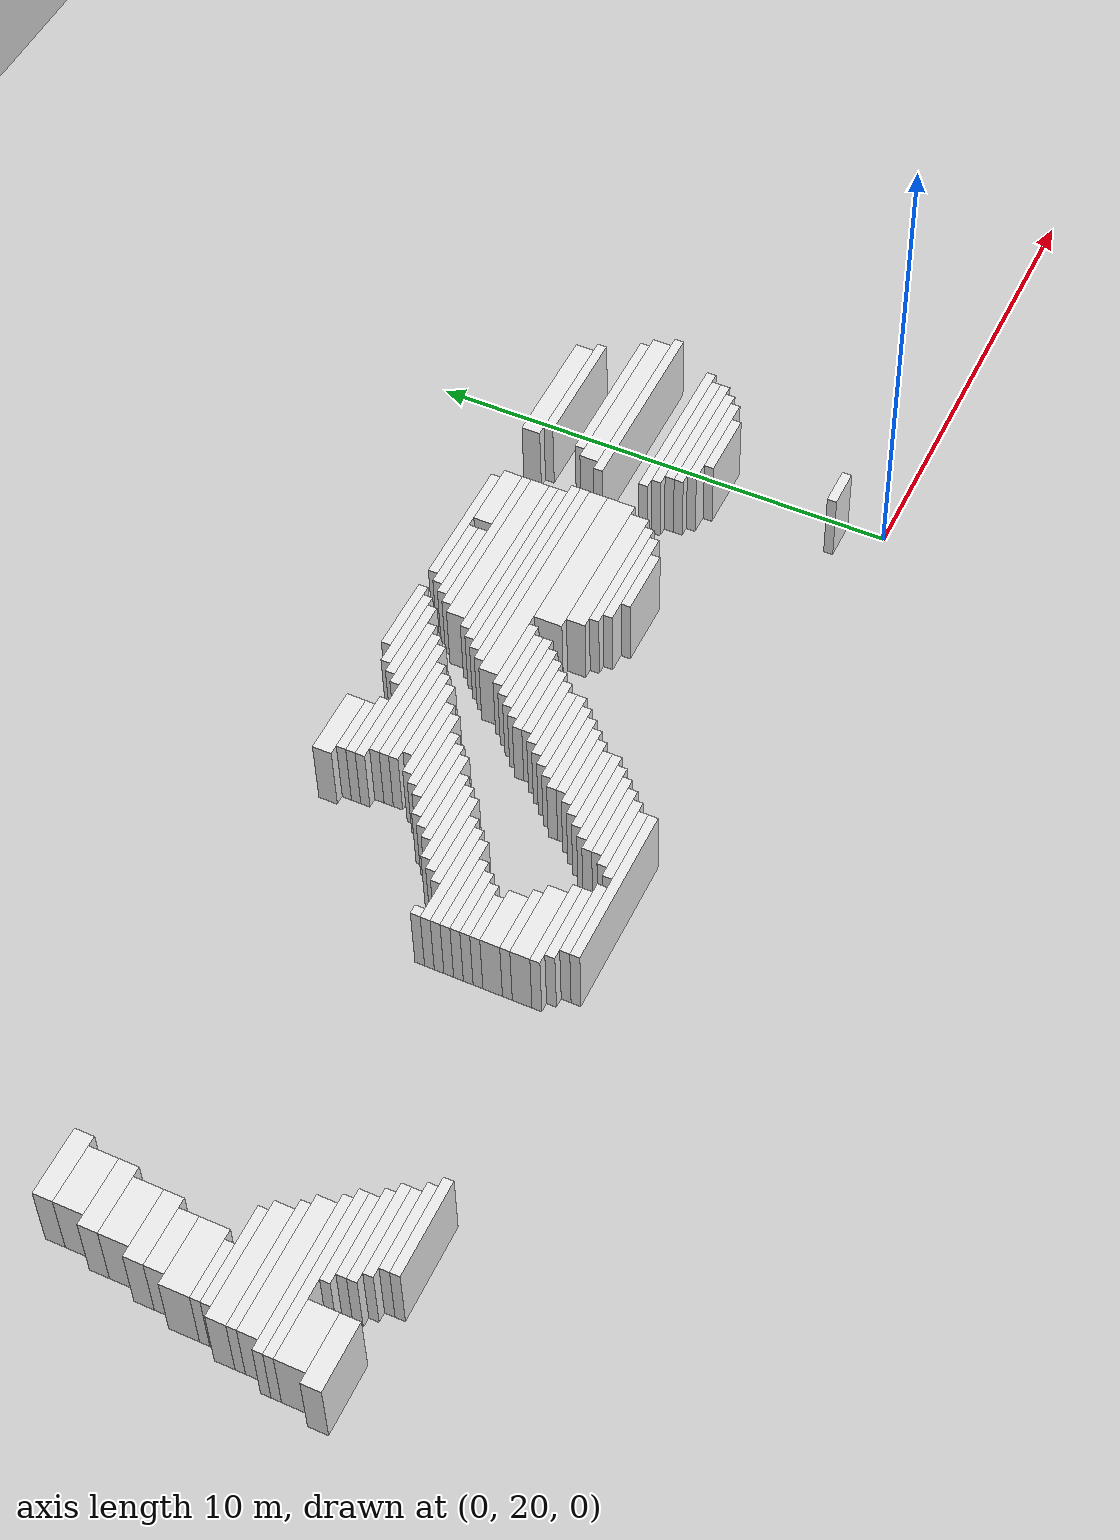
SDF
<sdf version="1.7">
 <world name="default">
  <model name="ground_plane">
   <static>1</static>
   <link name="link">
    <collision name="collision">
     <geometry><plane><normal>0 0 1</normal><size>120 120</size></plane></geometry>
    </collision>
    <visual name="visual">
     <geometry><plane><normal>0 0 1</normal><size>120 120</size></plane></geometry>
     <material>
      <script><uri>file://media/materials/scripts/gazebo.material</uri><name>Gazebo/Grey</name></script>
     </material>
    </visual>
   </link>
  </model>
  <model name="random_complex_02_model">
   <static>1</static>
   <link name="obs_894">
    <pose>-7.0000 27.3000 0.8000 0 0 0</pose>
    <collision name="obs_894_col"><geometry><box><size>1.6000 0.2000 1.6000</size></box></geometry></collision>
    <visual name="obs_894_vis">
     <geometry><box><size>1.6000 0.2000 1.6000</size></box></geometry>
     <material>
      <script><uri>file://media/materials/scripts/gazebo.material</uri><name>Gazebo/White</name></script>
     </material>
    </visual>
   </link>
   <link name="obs_895">
    <pose>-4.4000 27.3000 0.8000 0 0 0</pose>
    <collision name="obs_895_col"><geometry><box><size>2.8000 0.2000 1.6000</size></box></geometry></collision>
    <visual name="obs_895_vis">
     <geometry><box><size>2.8000 0.2000 1.6000</size></box></geometry>
     <material>
      <script><uri>file://media/materials/scripts/gazebo.material</uri><name>Gazebo/White</name></script>
     </material>
    </visual>
   </link>
   <link name="obs_899">
    <pose>-9.9000 27.2000 0.8000 0 0 0</pose>
    <collision name="obs_899_col"><geometry><box><size>1.4000 0.4000 1.6000</size></box></geometry></collision>
    <visual name="obs_899_vis">
     <geometry><box><size>1.4000 0.4000 1.6000</size></box></geometry>
     <material>
      <script><uri>file://media/materials/scripts/gazebo.material</uri><name>Gazebo/White</name></script>
     </material>
    </visual>
   </link>
   <link name="obs_900">
    <pose>-0.3000 27.2000 0.8000 0 0 0</pose>
    <collision name="obs_900_col"><geometry><box><size>2.6000 0.4000 1.6000</size></box></geometry></collision>
    <visual name="obs_900_vis">
     <geometry><box><size>2.6000 0.4000 1.6000</size></box></geometry>
     <material>
      <script><uri>file://media/materials/scripts/gazebo.material</uri><name>Gazebo/White</name></script>
     </material>
    </visual>
   </link>
   <link name="obs_901">
    <pose>-7.3000 27.1000 0.8000 0 0 0</pose>
    <collision name="obs_901_col"><geometry><box><size>1.8000 0.2000 1.6000</size></box></geometry></collision>
    <visual name="obs_901_vis">
     <geometry><box><size>1.8000 0.2000 1.6000</size></box></geometry>
     <material>
      <script><uri>file://media/materials/scripts/gazebo.material</uri><name>Gazebo/White</name></script>
     </material>
    </visual>
   </link>
   <link name="obs_902">
    <pose>-5.2000 27.1000 0.8000 0 0 0</pose>
    <collision name="obs_902_col"><geometry><box><size>1.6000 0.2000 1.6000</size></box></geometry></collision>
    <visual name="obs_902_vis">
     <geometry><box><size>1.6000 0.2000 1.6000</size></box></geometry>
     <material>
      <script><uri>file://media/materials/scripts/gazebo.material</uri><name>Gazebo/White</name></script>
     </material>
    </visual>
   </link>
   <link name="obs_906">
    <pose>-20.3000 27.0000 0.8000 0 0 0</pose>
    <collision name="obs_906_col"><geometry><box><size>1.4000 0.4000 1.6000</size></box></geometry></collision>
    <visual name="obs_906_vis">
     <geometry><box><size>1.4000 0.4000 1.6000</size></box></geometry>
     <material>
      <script><uri>file://media/materials/scripts/gazebo.material</uri><name>Gazebo/White</name></script>
     </material>
    </visual>
   </link>
   <link name="obs_907">
    <pose>-3.5000 27.0000 0.8000 0 0 0</pose>
    <collision name="obs_907_col"><geometry><box><size>1.4000 0.4000 1.6000</size></box></geometry></collision>
    <visual name="obs_907_vis">
     <geometry><box><size>1.4000 0.4000 1.6000</size></box></geometry>
     <material>
      <script><uri>file://media/materials/scripts/gazebo.material</uri><name>Gazebo/White</name></script>
     </material>
    </visual>
   </link>
   <link name="obs_909">
    <pose>-9.8000 26.9000 0.8000 0 0 0</pose>
    <collision name="obs_909_col"><geometry><box><size>1.2000 0.2000 1.6000</size></box></geometry></collision>
    <visual name="obs_909_vis">
     <geometry><box><size>1.2000 0.2000 1.6000</size></box></geometry>
     <material>
      <script><uri>file://media/materials/scripts/gazebo.material</uri><name>Gazebo/White</name></script>
     </material>
    </visual>
   </link>
   <link name="obs_910">
    <pose>-7.5000 26.9000 0.8000 0 0 0</pose>
    <collision name="obs_910_col"><geometry><box><size>1.8000 0.2000 1.6000</size></box></geometry></collision>
    <visual name="obs_910_vis">
     <geometry><box><size>1.8000 0.2000 1.6000</size></box></geometry>
     <material>
      <script><uri>file://media/materials/scripts/gazebo.material</uri><name>Gazebo/White</name></script>
     </material>
    </visual>
   </link>
   <link name="obs_911">
    <pose>-5.3000 26.9000 0.8000 0 0 0</pose>
    <collision name="obs_911_col"><geometry><box><size>1.8000 0.2000 1.6000</size></box></geometry></collision>
    <visual name="obs_911_vis">
     <geometry><box><size>1.8000 0.2000 1.6000</size></box></geometry>
     <material>
      <script><uri>file://media/materials/scripts/gazebo.material</uri><name>Gazebo/White</name></script>
     </material>
    </visual>
   </link>
   <link name="obs_912">
    <pose>-0.1000 26.9000 0.8000 0 0 0</pose>
    <collision name="obs_912_col"><geometry><box><size>2.6000 0.2000 1.6000</size></box></geometry></collision>
    <visual name="obs_912_vis">
     <geometry><box><size>2.6000 0.2000 1.6000</size></box></geometry>
     <material>
      <script><uri>file://media/materials/scripts/gazebo.material</uri><name>Gazebo/White</name></script>
     </material>
    </visual>
   </link>
   <link name="obs_916">
    <pose>-9.7000 26.7000 0.8000 0 0 0</pose>
    <collision name="obs_916_col"><geometry><box><size>1.4000 0.2000 1.6000</size></box></geometry></collision>
    <visual name="obs_916_vis">
     <geometry><box><size>1.4000 0.2000 1.6000</size></box></geometry>
     <material>
      <script><uri>file://media/materials/scripts/gazebo.material</uri><name>Gazebo/White</name></script>
     </material>
    </visual>
   </link>
   <link name="obs_917">
    <pose>-7.8000 26.7000 0.8000 0 0 0</pose>
    <collision name="obs_917_col"><geometry><box><size>1.6000 0.2000 1.6000</size></box></geometry></collision>
    <visual name="obs_917_vis">
     <geometry><box><size>1.6000 0.2000 1.6000</size></box></geometry>
     <material>
      <script><uri>file://media/materials/scripts/gazebo.material</uri><name>Gazebo/White</name></script>
     </material>
    </visual>
   </link>
   <link name="obs_918">
    <pose>-4.6000 26.7000 0.8000 0 0 0</pose>
    <collision name="obs_918_col"><geometry><box><size>3.6000 0.2000 1.6000</size></box></geometry></collision>
    <visual name="obs_918_vis">
     <geometry><box><size>3.6000 0.2000 1.6000</size></box></geometry>
     <material>
      <script><uri>file://media/materials/scripts/gazebo.material</uri><name>Gazebo/White</name></script>
     </material>
    </visual>
   </link>
   <link name="obs_924">
    <pose>-8.8000 26.5000 0.8000 0 0 0</pose>
    <collision name="obs_924_col"><geometry><box><size>3.2000 0.2000 1.6000</size></box></geometry></collision>
    <visual name="obs_924_vis">
     <geometry><box><size>3.2000 0.2000 1.6000</size></box></geometry>
     <material>
      <script><uri>file://media/materials/scripts/gazebo.material</uri><name>Gazebo/White</name></script>
     </material>
    </visual>
   </link>
   <link name="obs_927">
    <pose>-20.4000 26.5000 0.8000 0 0 0</pose>
    <collision name="obs_927_col"><geometry><box><size>1.2000 0.6000 1.6000</size></box></geometry></collision>
    <visual name="obs_927_vis">
     <geometry><box><size>1.2000 0.6000 1.6000</size></box></geometry>
     <material>
      <script><uri>file://media/materials/scripts/gazebo.material</uri><name>Gazebo/White</name></script>
     </material>
    </visual>
   </link>
   <link name="obs_928">
    <pose>-4.7000 26.4000 0.8000 0 0 0</pose>
    <collision name="obs_928_col"><geometry><box><size>3.8000 0.4000 1.6000</size></box></geometry></collision>
    <visual name="obs_928_vis">
     <geometry><box><size>3.8000 0.4000 1.6000</size></box></geometry>
     <material>
      <script><uri>file://media/materials/scripts/gazebo.material</uri><name>Gazebo/White</name></script>
     </material>
    </visual>
   </link>
   <link name="obs_931">
    <pose>-8.8000 26.3000 0.8000 0 0 0</pose>
    <collision name="obs_931_col"><geometry><box><size>2.8000 0.2000 1.6000</size></box></geometry></collision>
    <visual name="obs_931_vis">
     <geometry><box><size>2.8000 0.2000 1.6000</size></box></geometry>
     <material>
      <script><uri>file://media/materials/scripts/gazebo.material</uri><name>Gazebo/White</name></script>
     </material>
    </visual>
   </link>
   <link name="obs_938">
    <pose>-9.0000 26.1000 0.8000 0 0 0</pose>
    <collision name="obs_938_col"><geometry><box><size>2.4000 0.2000 1.6000</size></box></geometry></collision>
    <visual name="obs_938_vis">
     <geometry><box><size>2.4000 0.2000 1.6000</size></box></geometry>
     <material>
      <script><uri>file://media/materials/scripts/gazebo.material</uri><name>Gazebo/White</name></script>
     </material>
    </visual>
   </link>
   <link name="obs_939">
    <pose>-4.8000 26.1000 0.8000 0 0 0</pose>
    <collision name="obs_939_col"><geometry><box><size>4.0000 0.2000 1.6000</size></box></geometry></collision>
    <visual name="obs_939_vis">
     <geometry><box><size>4.0000 0.2000 1.6000</size></box></geometry>
     <material>
      <script><uri>file://media/materials/scripts/gazebo.material</uri><name>Gazebo/White</name></script>
     </material>
    </visual>
   </link>
   <link name="obs_940">
    <pose>0.0000 26.1000 0.8000 0 0 0</pose>
    <collision name="obs_940_col"><geometry><box><size>3.2000 0.2000 1.6000</size></box></geometry></collision>
    <visual name="obs_940_vis">
     <geometry><box><size>3.2000 0.2000 1.6000</size></box></geometry>
     <material>
      <script><uri>file://media/materials/scripts/gazebo.material</uri><name>Gazebo/White</name></script>
     </material>
    </visual>
   </link>
   <link name="obs_945">
    <pose>-20.5000 26.0000 0.8000 0 0 0</pose>
    <collision name="obs_945_col"><geometry><box><size>1.4000 0.4000 1.6000</size></box></geometry></collision>
    <visual name="obs_945_vis">
     <geometry><box><size>1.4000 0.4000 1.6000</size></box></geometry>
     <material>
      <script><uri>file://media/materials/scripts/gazebo.material</uri><name>Gazebo/White</name></script>
     </material>
    </visual>
   </link>
   <link name="obs_948">
    <pose>-9.1000 25.9000 0.8000 0 0 0</pose>
    <collision name="obs_948_col"><geometry><box><size>2.2000 0.2000 1.6000</size></box></geometry></collision>
    <visual name="obs_948_vis">
     <geometry><box><size>2.2000 0.2000 1.6000</size></box></geometry>
     <material>
      <script><uri>file://media/materials/scripts/gazebo.material</uri><name>Gazebo/White</name></script>
     </material>
    </visual>
   </link>
   <link name="obs_949">
    <pose>-4.9000 25.9000 0.8000 0 0 0</pose>
    <collision name="obs_949_col"><geometry><box><size>4.2000 0.2000 1.6000</size></box></geometry></collision>
    <visual name="obs_949_vis">
     <geometry><box><size>4.2000 0.2000 1.6000</size></box></geometry>
     <material>
      <script><uri>file://media/materials/scripts/gazebo.material</uri><name>Gazebo/White</name></script>
     </material>
    </visual>
   </link>
   <link name="obs_953">
    <pose>0.0000 25.8000 0.8000 0 0 0</pose>
    <collision name="obs_953_col"><geometry><box><size>3.6000 0.4000 1.6000</size></box></geometry></collision>
    <visual name="obs_953_vis">
     <geometry><box><size>3.6000 0.4000 1.6000</size></box></geometry>
     <material>
      <script><uri>file://media/materials/scripts/gazebo.material</uri><name>Gazebo/White</name></script>
     </material>
    </visual>
   </link>
   <link name="obs_956">
    <pose>-9.1000 25.7000 0.8000 0 0 0</pose>
    <collision name="obs_956_col"><geometry><box><size>1.8000 0.2000 1.6000</size></box></geometry></collision>
    <visual name="obs_956_vis">
     <geometry><box><size>1.8000 0.2000 1.6000</size></box></geometry>
     <material>
      <script><uri>file://media/materials/scripts/gazebo.material</uri><name>Gazebo/White</name></script>
     </material>
    </visual>
   </link>
   <link name="obs_957">
    <pose>-4.9000 25.7000 0.8000 0 0 0</pose>
    <collision name="obs_957_col"><geometry><box><size>4.6000 0.2000 1.6000</size></box></geometry></collision>
    <visual name="obs_957_vis">
     <geometry><box><size>4.6000 0.2000 1.6000</size></box></geometry>
     <material>
      <script><uri>file://media/materials/scripts/gazebo.material</uri><name>Gazebo/White</name></script>
     </material>
    </visual>
   </link>
   <link name="obs_963">
    <pose>-9.5000 25.5000 0.8000 0 0 0</pose>
    <collision name="obs_963_col"><geometry><box><size>1.8000 0.2000 1.6000</size></box></geometry></collision>
    <visual name="obs_963_vis">
     <geometry><box><size>1.8000 0.2000 1.6000</size></box></geometry>
     <material>
      <script><uri>file://media/materials/scripts/gazebo.material</uri><name>Gazebo/White</name></script>
     </material>
    </visual>
   </link>
   <link name="obs_964">
    <pose>-5.0000 25.5000 0.8000 0 0 0</pose>
    <collision name="obs_964_col"><geometry><box><size>4.8000 0.2000 1.6000</size></box></geometry></collision>
    <visual name="obs_964_vis">
     <geometry><box><size>4.8000 0.2000 1.6000</size></box></geometry>
     <material>
      <script><uri>file://media/materials/scripts/gazebo.material</uri><name>Gazebo/White</name></script>
     </material>
    </visual>
   </link>
   <link name="obs_965">
    <pose>0.0000 25.5000 0.8000 0 0 0</pose>
    <collision name="obs_965_col"><geometry><box><size>4.0000 0.2000 1.6000</size></box></geometry></collision>
    <visual name="obs_965_vis">
     <geometry><box><size>4.0000 0.2000 1.6000</size></box></geometry>
     <material>
      <script><uri>file://media/materials/scripts/gazebo.material</uri><name>Gazebo/White</name></script>
     </material>
    </visual>
   </link>
   <link name="obs_970">
    <pose>-20.6000 25.5000 0.8000 0 0 0</pose>
    <collision name="obs_970_col"><geometry><box><size>1.2000 0.6000 1.6000</size></box></geometry></collision>
    <visual name="obs_970_vis">
     <geometry><box><size>1.2000 0.6000 1.6000</size></box></geometry>
     <material>
      <script><uri>file://media/materials/scripts/gazebo.material</uri><name>Gazebo/White</name></script>
     </material>
    </visual>
   </link>
   <link name="obs_973">
    <pose>-9.7000 25.3000 0.8000 0 0 0</pose>
    <collision name="obs_973_col"><geometry><box><size>1.8000 0.2000 1.6000</size></box></geometry></collision>
    <visual name="obs_973_vis">
     <geometry><box><size>1.8000 0.2000 1.6000</size></box></geometry>
     <material>
      <script><uri>file://media/materials/scripts/gazebo.material</uri><name>Gazebo/White</name></script>
     </material>
    </visual>
   </link>
   <link name="obs_976">
    <pose>-5.1000 25.2000 0.8000 0 0 0</pose>
    <collision name="obs_976_col"><geometry><box><size>5.0000 0.4000 1.6000</size></box></geometry></collision>
    <visual name="obs_976_vis">
     <geometry><box><size>5.0000 0.4000 1.6000</size></box></geometry>
     <material>
      <script><uri>file://media/materials/scripts/gazebo.material</uri><name>Gazebo/White</name></script>
     </material>
    </visual>
   </link>
   <link name="obs_980">
    <pose>-10.0000 25.1000 0.8000 0 0 0</pose>
    <collision name="obs_980_col"><geometry><box><size>1.6000 0.2000 1.6000</size></box></geometry></collision>
    <visual name="obs_980_vis">
     <geometry><box><size>1.6000 0.2000 1.6000</size></box></geometry>
     <material>
      <script><uri>file://media/materials/scripts/gazebo.material</uri><name>Gazebo/White</name></script>
     </material>
    </visual>
   </link>
   <link name="obs_984">
    <pose>-20.7000 25.0000 0.8000 0 0 0</pose>
    <collision name="obs_984_col"><geometry><box><size>1.4000 0.4000 1.6000</size></box></geometry></collision>
    <visual name="obs_984_vis">
     <geometry><box><size>1.4000 0.4000 1.6000</size></box></geometry>
     <material>
      <script><uri>file://media/materials/scripts/gazebo.material</uri><name>Gazebo/White</name></script>
     </material>
    </visual>
   </link>
   <link name="obs_987">
    <pose>-10.3000 24.9000 0.8000 0 0 0</pose>
    <collision name="obs_987_col"><geometry><box><size>1.8000 0.2000 1.6000</size></box></geometry></collision>
    <visual name="obs_987_vis">
     <geometry><box><size>1.8000 0.2000 1.6000</size></box></geometry>
     <material>
      <script><uri>file://media/materials/scripts/gazebo.material</uri><name>Gazebo/White</name></script>
     </material>
    </visual>
   </link>
   <link name="obs_988">
    <pose>-7.0000 24.9000 0.8000 0 0 0</pose>
    <collision name="obs_988_col"><geometry><box><size>1.6000 0.2000 1.6000</size></box></geometry></collision>
    <visual name="obs_988_vis">
     <geometry><box><size>1.6000 0.2000 1.6000</size></box></geometry>
     <material>
      <script><uri>file://media/materials/scripts/gazebo.material</uri><name>Gazebo/White</name></script>
     </material>
    </visual>
   </link>
   <link name="obs_998">
    <pose>-10.5000 24.7000 0.8000 0 0 0</pose>
    <collision name="obs_998_col"><geometry><box><size>1.8000 0.2000 1.6000</size></box></geometry></collision>
    <visual name="obs_998_vis">
     <geometry><box><size>1.8000 0.2000 1.6000</size></box></geometry>
     <material>
      <script><uri>file://media/materials/scripts/gazebo.material</uri><name>Gazebo/White</name></script>
     </material>
    </visual>
   </link>
   <link name="obs_999">
    <pose>-7.2000 24.7000 0.8000 0 0 0</pose>
    <collision name="obs_999_col"><geometry><box><size>1.6000 0.2000 1.6000</size></box></geometry></collision>
    <visual name="obs_999_vis">
     <geometry><box><size>1.6000 0.2000 1.6000</size></box></geometry>
     <material>
      <script><uri>file://media/materials/scripts/gazebo.material</uri><name>Gazebo/White</name></script>
     </material>
    </visual>
   </link>
   <link name="obs_1006">
    <pose>-4.3000 24.7000 0.8000 0 0 0</pose>
    <collision name="obs_1006_col"><geometry><box><size>3.4000 0.6000 1.6000</size></box></geometry></collision>
    <visual name="obs_1006_vis">
     <geometry><box><size>3.4000 0.6000 1.6000</size></box></geometry>
     <material>
      <script><uri>file://media/materials/scripts/gazebo.material</uri><name>Gazebo/White</name></script>
     </material>
    </visual>
   </link>
   <link name="obs_1007">
    <pose>-20.8000 24.6000 0.8000 0 0 0</pose>
    <collision name="obs_1007_col"><geometry><box><size>1.2000 0.4000 1.6000</size></box></geometry></collision>
    <visual name="obs_1007_vis">
     <geometry><box><size>1.2000 0.4000 1.6000</size></box></geometry>
     <material>
      <script><uri>file://media/materials/scripts/gazebo.material</uri><name>Gazebo/White</name></script>
     </material>
    </visual>
   </link>
   <link name="obs_1009">
    <pose>-10.8000 24.5000 0.8000 0 0 0</pose>
    <collision name="obs_1009_col"><geometry><box><size>1.6000 0.2000 1.6000</size></box></geometry></collision>
    <visual name="obs_1009_vis">
     <geometry><box><size>1.6000 0.2000 1.6000</size></box></geometry>
     <material>
      <script><uri>file://media/materials/scripts/gazebo.material</uri><name>Gazebo/White</name></script>
     </material>
    </visual>
   </link>
   <link name="obs_1010">
    <pose>-7.3000 24.5000 0.8000 0 0 0</pose>
    <collision name="obs_1010_col"><geometry><box><size>1.8000 0.2000 1.6000</size></box></geometry></collision>
    <visual name="obs_1010_vis">
     <geometry><box><size>1.8000 0.2000 1.6000</size></box></geometry>
     <material>
      <script><uri>file://media/materials/scripts/gazebo.material</uri><name>Gazebo/White</name></script>
     </material>
    </visual>
   </link>
   <link name="obs_1011">
    <pose>-0.3000 24.5000 0.8000 0 0 0</pose>
    <collision name="obs_1011_col"><geometry><box><size>3.4000 0.2000 1.6000</size></box></geometry></collision>
    <visual name="obs_1011_vis">
     <geometry><box><size>3.4000 0.2000 1.6000</size></box></geometry>
     <material>
      <script><uri>file://media/materials/scripts/gazebo.material</uri><name>Gazebo/White</name></script>
     </material>
    </visual>
   </link>
   <link name="obs_1021">
    <pose>-11.1000 24.3000 0.8000 0 0 0</pose>
    <collision name="obs_1021_col"><geometry><box><size>1.8000 0.2000 1.6000</size></box></geometry></collision>
    <visual name="obs_1021_vis">
     <geometry><box><size>1.8000 0.2000 1.6000</size></box></geometry>
     <material>
      <script><uri>file://media/materials/scripts/gazebo.material</uri><name>Gazebo/White</name></script>
     </material>
    </visual>
   </link>
   <link name="obs_1022">
    <pose>-7.5000 24.3000 0.8000 0 0 0</pose>
    <collision name="obs_1022_col"><geometry><box><size>1.8000 0.2000 1.6000</size></box></geometry></collision>
    <visual name="obs_1022_vis">
     <geometry><box><size>1.8000 0.2000 1.6000</size></box></geometry>
     <material>
      <script><uri>file://media/materials/scripts/gazebo.material</uri><name>Gazebo/White</name></script>
     </material>
    </visual>
   </link>
   <link name="obs_1023">
    <pose>-0.3000 24.3000 0.8000 0 0 0</pose>
    <collision name="obs_1023_col"><geometry><box><size>3.0000 0.2000 1.6000</size></box></geometry></collision>
    <visual name="obs_1023_vis">
     <geometry><box><size>3.0000 0.2000 1.6000</size></box></geometry>
     <material>
      <script><uri>file://media/materials/scripts/gazebo.material</uri><name>Gazebo/White</name></script>
     </material>
    </visual>
   </link>
   <link name="obs_1033">
    <pose>-4.3000 24.2000 0.8000 0 0 0</pose>
    <collision name="obs_1033_col"><geometry><box><size>3.0000 0.4000 1.6000</size></box></geometry></collision>
    <visual name="obs_1033_vis">
     <geometry><box><size>3.0000 0.4000 1.6000</size></box></geometry>
     <material>
      <script><uri>file://media/materials/scripts/gazebo.material</uri><name>Gazebo/White</name></script>
     </material>
    </visual>
   </link>
   <link name="obs_1036">
    <pose>-11.3000 24.1000 0.8000 0 0 0</pose>
    <collision name="obs_1036_col"><geometry><box><size>1.8000 0.2000 1.6000</size></box></geometry></collision>
    <visual name="obs_1036_vis">
     <geometry><box><size>1.8000 0.2000 1.6000</size></box></geometry>
     <material>
      <script><uri>file://media/materials/scripts/gazebo.material</uri><name>Gazebo/White</name></script>
     </material>
    </visual>
   </link>
   <link name="obs_1037">
    <pose>-7.7000 24.1000 0.8000 0 0 0</pose>
    <collision name="obs_1037_col"><geometry><box><size>1.8000 0.2000 1.6000</size></box></geometry></collision>
    <visual name="obs_1037_vis">
     <geometry><box><size>1.8000 0.2000 1.6000</size></box></geometry>
     <material>
      <script><uri>file://media/materials/scripts/gazebo.material</uri><name>Gazebo/White</name></script>
     </material>
    </visual>
   </link>
   <link name="obs_1038">
    <pose>-0.2000 24.1000 0.8000 0 0 0</pose>
    <collision name="obs_1038_col"><geometry><box><size>2.8000 0.2000 1.6000</size></box></geometry></collision>
    <visual name="obs_1038_vis">
     <geometry><box><size>2.8000 0.2000 1.6000</size></box></geometry>
     <material>
      <script><uri>file://media/materials/scripts/gazebo.material</uri><name>Gazebo/White</name></script>
     </material>
    </visual>
   </link>
   <link name="obs_1047">
    <pose>-20.9000 24.1000 0.8000 0 0 0</pose>
    <collision name="obs_1047_col"><geometry><box><size>1.4000 0.6000 1.6000</size></box></geometry></collision>
    <visual name="obs_1047_vis">
     <geometry><box><size>1.4000 0.6000 1.6000</size></box></geometry>
     <material>
      <script><uri>file://media/materials/scripts/gazebo.material</uri><name>Gazebo/White</name></script>
     </material>
    </visual>
   </link>
   <link name="obs_1049">
    <pose>-13.1000 23.9000 0.8000 0 0 0</pose>
    <collision name="obs_1049_col"><geometry><box><size>0.2000 0.2000 1.6000</size></box></geometry></collision>
    <visual name="obs_1049_vis">
     <geometry><box><size>0.2000 0.2000 1.6000</size></box></geometry>
     <material>
      <script><uri>file://media/materials/scripts/gazebo.material</uri><name>Gazebo/White</name></script>
     </material>
    </visual>
   </link>
   <link name="obs_1050">
    <pose>-11.6000 23.9000 0.8000 0 0 0</pose>
    <collision name="obs_1050_col"><geometry><box><size>1.6000 0.2000 1.6000</size></box></geometry></collision>
    <visual name="obs_1050_vis">
     <geometry><box><size>1.6000 0.2000 1.6000</size></box></geometry>
     <material>
      <script><uri>file://media/materials/scripts/gazebo.material</uri><name>Gazebo/White</name></script>
     </material>
    </visual>
   </link>
   <link name="obs_1051">
    <pose>-7.8000 23.9000 0.8000 0 0 0</pose>
    <collision name="obs_1051_col"><geometry><box><size>1.6000 0.2000 1.6000</size></box></geometry></collision>
    <visual name="obs_1051_vis">
     <geometry><box><size>1.6000 0.2000 1.6000</size></box></geometry>
     <material>
      <script><uri>file://media/materials/scripts/gazebo.material</uri><name>Gazebo/White</name></script>
     </material>
    </visual>
   </link>
   <link name="obs_1052">
    <pose>-4.3000 23.9000 0.8000 0 0 0</pose>
    <collision name="obs_1052_col"><geometry><box><size>2.6000 0.2000 1.6000</size></box></geometry></collision>
    <visual name="obs_1052_vis">
     <geometry><box><size>2.6000 0.2000 1.6000</size></box></geometry>
     <material>
      <script><uri>file://media/materials/scripts/gazebo.material</uri><name>Gazebo/White</name></script>
     </material>
    </visual>
   </link>
   <link name="obs_1053">
    <pose>-0.3000 23.9000 0.8000 0 0 0</pose>
    <collision name="obs_1053_col"><geometry><box><size>2.6000 0.2000 1.6000</size></box></geometry></collision>
    <visual name="obs_1053_vis">
     <geometry><box><size>2.6000 0.2000 1.6000</size></box></geometry>
     <material>
      <script><uri>file://media/materials/scripts/gazebo.material</uri><name>Gazebo/White</name></script>
     </material>
    </visual>
   </link>
   <link name="obs_1059">
    <pose>-21.0000 23.7000 0.8000 0 0 0</pose>
    <collision name="obs_1059_col"><geometry><box><size>1.2000 0.2000 1.6000</size></box></geometry></collision>
    <visual name="obs_1059_vis">
     <geometry><box><size>1.2000 0.2000 1.6000</size></box></geometry>
     <material>
      <script><uri>file://media/materials/scripts/gazebo.material</uri><name>Gazebo/White</name></script>
     </material>
    </visual>
   </link>
   <link name="obs_1060">
    <pose>-12.1000 23.7000 0.8000 0 0 0</pose>
    <collision name="obs_1060_col"><geometry><box><size>2.2000 0.2000 1.6000</size></box></geometry></collision>
    <visual name="obs_1060_vis">
     <geometry><box><size>2.2000 0.2000 1.6000</size></box></geometry>
     <material>
      <script><uri>file://media/materials/scripts/gazebo.material</uri><name>Gazebo/White</name></script>
     </material>
    </visual>
   </link>
   <link name="obs_1061">
    <pose>-8.0000 23.7000 0.8000 0 0 0</pose>
    <collision name="obs_1061_col"><geometry><box><size>1.6000 0.2000 1.6000</size></box></geometry></collision>
    <visual name="obs_1061_vis">
     <geometry><box><size>1.6000 0.2000 1.6000</size></box></geometry>
     <material>
      <script><uri>file://media/materials/scripts/gazebo.material</uri><name>Gazebo/White</name></script>
     </material>
    </visual>
   </link>
   <link name="obs_1062">
    <pose>-4.3000 23.7000 0.8000 0 0 0</pose>
    <collision name="obs_1062_col"><geometry><box><size>2.2000 0.2000 1.6000</size></box></geometry></collision>
    <visual name="obs_1062_vis">
     <geometry><box><size>2.2000 0.2000 1.6000</size></box></geometry>
     <material>
      <script><uri>file://media/materials/scripts/gazebo.material</uri><name>Gazebo/White</name></script>
     </material>
    </visual>
   </link>
   <link name="obs_1063">
    <pose>-0.3000 23.7000 0.8000 0 0 0</pose>
    <collision name="obs_1063_col"><geometry><box><size>2.2000 0.2000 1.6000</size></box></geometry></collision>
    <visual name="obs_1063_vis">
     <geometry><box><size>2.2000 0.2000 1.6000</size></box></geometry>
     <material>
      <script><uri>file://media/materials/scripts/gazebo.material</uri><name>Gazebo/White</name></script>
     </material>
    </visual>
   </link>
   <link name="obs_1071">
    <pose>-20.6000 23.5000 0.8000 0 0 0</pose>
    <collision name="obs_1071_col"><geometry><box><size>2.0000 0.2000 1.6000</size></box></geometry></collision>
    <visual name="obs_1071_vis">
     <geometry><box><size>2.0000 0.2000 1.6000</size></box></geometry>
     <material>
      <script><uri>file://media/materials/scripts/gazebo.material</uri><name>Gazebo/White</name></script>
     </material>
    </visual>
   </link>
   <link name="obs_1072">
    <pose>-12.2000 23.5000 0.8000 0 0 0</pose>
    <collision name="obs_1072_col"><geometry><box><size>2.0000 0.2000 1.6000</size></box></geometry></collision>
    <visual name="obs_1072_vis">
     <geometry><box><size>2.0000 0.2000 1.6000</size></box></geometry>
     <material>
      <script><uri>file://media/materials/scripts/gazebo.material</uri><name>Gazebo/White</name></script>
     </material>
    </visual>
   </link>
   <link name="obs_1073">
    <pose>-8.2000 23.5000 0.8000 0 0 0</pose>
    <collision name="obs_1073_col"><geometry><box><size>1.6000 0.2000 1.6000</size></box></geometry></collision>
    <visual name="obs_1073_vis">
     <geometry><box><size>1.6000 0.2000 1.6000</size></box></geometry>
     <material>
      <script><uri>file://media/materials/scripts/gazebo.material</uri><name>Gazebo/White</name></script>
     </material>
    </visual>
   </link>
   <link name="obs_1074">
    <pose>-4.3000 23.5000 0.8000 0 0 0</pose>
    <collision name="obs_1074_col"><geometry><box><size>1.4000 0.2000 1.6000</size></box></geometry></collision>
    <visual name="obs_1074_vis">
     <geometry><box><size>1.4000 0.2000 1.6000</size></box></geometry>
     <material>
      <script><uri>file://media/materials/scripts/gazebo.material</uri><name>Gazebo/White</name></script>
     </material>
    </visual>
   </link>
   <link name="obs_1075">
    <pose>-0.3000 23.5000 0.8000 0 0 0</pose>
    <collision name="obs_1075_col"><geometry><box><size>1.4000 0.2000 1.6000</size></box></geometry></collision>
    <visual name="obs_1075_vis">
     <geometry><box><size>1.4000 0.2000 1.6000</size></box></geometry>
     <material>
      <script><uri>file://media/materials/scripts/gazebo.material</uri><name>Gazebo/White</name></script>
     </material>
    </visual>
   </link>
   <link name="obs_1080">
    <pose>-12.4000 23.3000 0.8000 0 0 0</pose>
    <collision name="obs_1080_col"><geometry><box><size>1.6000 0.2000 1.6000</size></box></geometry></collision>
    <visual name="obs_1080_vis">
     <geometry><box><size>1.6000 0.2000 1.6000</size></box></geometry>
     <material>
      <script><uri>file://media/materials/scripts/gazebo.material</uri><name>Gazebo/White</name></script>
     </material>
    </visual>
   </link>
   <link name="obs_1081">
    <pose>-8.3000 23.3000 0.8000 0 0 0</pose>
    <collision name="obs_1081_col"><geometry><box><size>1.8000 0.2000 1.6000</size></box></geometry></collision>
    <visual name="obs_1081_vis">
     <geometry><box><size>1.8000 0.2000 1.6000</size></box></geometry>
     <material>
      <script><uri>file://media/materials/scripts/gazebo.material</uri><name>Gazebo/White</name></script>
     </material>
    </visual>
   </link>
   <link name="obs_1085">
    <pose>-20.6000 23.2000 0.8000 0 0 0</pose>
    <collision name="obs_1085_col"><geometry><box><size>2.4000 0.4000 1.6000</size></box></geometry></collision>
    <visual name="obs_1085_vis">
     <geometry><box><size>2.4000 0.4000 1.6000</size></box></geometry>
     <material>
      <script><uri>file://media/materials/scripts/gazebo.material</uri><name>Gazebo/White</name></script>
     </material>
    </visual>
   </link>
   <link name="obs_1089">
    <pose>-12.5000 23.1000 0.8000 0 0 0</pose>
    <collision name="obs_1089_col"><geometry><box><size>1.4000 0.2000 1.6000</size></box></geometry></collision>
    <visual name="obs_1089_vis">
     <geometry><box><size>1.4000 0.2000 1.6000</size></box></geometry>
     <material>
      <script><uri>file://media/materials/scripts/gazebo.material</uri><name>Gazebo/White</name></script>
     </material>
    </visual>
   </link>
   <link name="obs_1090">
    <pose>-8.5000 23.1000 0.8000 0 0 0</pose>
    <collision name="obs_1090_col"><geometry><box><size>1.8000 0.2000 1.6000</size></box></geometry></collision>
    <visual name="obs_1090_vis">
     <geometry><box><size>1.8000 0.2000 1.6000</size></box></geometry>
     <material>
      <script><uri>file://media/materials/scripts/gazebo.material</uri><name>Gazebo/White</name></script>
     </material>
    </visual>
   </link>
   <link name="obs_1098">
    <pose>-20.5000 22.9000 0.8000 0 0 0</pose>
    <collision name="obs_1098_col"><geometry><box><size>2.6000 0.2000 1.6000</size></box></geometry></collision>
    <visual name="obs_1098_vis">
     <geometry><box><size>2.6000 0.2000 1.6000</size></box></geometry>
     <material>
      <script><uri>file://media/materials/scripts/gazebo.material</uri><name>Gazebo/White</name></script>
     </material>
    </visual>
   </link>
   <link name="obs_1099">
    <pose>-12.6000 22.9000 0.8000 0 0 0</pose>
    <collision name="obs_1099_col"><geometry><box><size>1.2000 0.2000 1.6000</size></box></geometry></collision>
    <visual name="obs_1099_vis">
     <geometry><box><size>1.2000 0.2000 1.6000</size></box></geometry>
     <material>
      <script><uri>file://media/materials/scripts/gazebo.material</uri><name>Gazebo/White</name></script>
     </material>
    </visual>
   </link>
   <link name="obs_1100">
    <pose>-8.7000 22.9000 0.8000 0 0 0</pose>
    <collision name="obs_1100_col"><geometry><box><size>1.8000 0.2000 1.6000</size></box></geometry></collision>
    <visual name="obs_1100_vis">
     <geometry><box><size>1.8000 0.2000 1.6000</size></box></geometry>
     <material>
      <script><uri>file://media/materials/scripts/gazebo.material</uri><name>Gazebo/White</name></script>
     </material>
    </visual>
   </link>
   <link name="obs_1109">
    <pose>-12.7000 22.7000 0.8000 0 0 0</pose>
    <collision name="obs_1109_col"><geometry><box><size>1.0000 0.2000 1.6000</size></box></geometry></collision>
    <visual name="obs_1109_vis">
     <geometry><box><size>1.0000 0.2000 1.6000</size></box></geometry>
     <material>
      <script><uri>file://media/materials/scripts/gazebo.material</uri><name>Gazebo/White</name></script>
     </material>
    </visual>
   </link>
   <link name="obs_1110">
    <pose>-8.8000 22.7000 0.8000 0 0 0</pose>
    <collision name="obs_1110_col"><geometry><box><size>1.6000 0.2000 1.6000</size></box></geometry></collision>
    <visual name="obs_1110_vis">
     <geometry><box><size>1.6000 0.2000 1.6000</size></box></geometry>
     <material>
      <script><uri>file://media/materials/scripts/gazebo.material</uri><name>Gazebo/White</name></script>
     </material>
    </visual>
   </link>
   <link name="obs_1115">
    <pose>-20.4000 22.6000 0.8000 0 0 0</pose>
    <collision name="obs_1115_col"><geometry><box><size>2.8000 0.4000 1.6000</size></box></geometry></collision>
    <visual name="obs_1115_vis">
     <geometry><box><size>2.8000 0.4000 1.6000</size></box></geometry>
     <material>
      <script><uri>file://media/materials/scripts/gazebo.material</uri><name>Gazebo/White</name></script>
     </material>
    </visual>
   </link>
   <link name="obs_1119">
    <pose>-9.0000 22.5000 0.8000 0 0 0</pose>
    <collision name="obs_1119_col"><geometry><box><size>1.6000 0.2000 1.6000</size></box></geometry></collision>
    <visual name="obs_1119_vis">
     <geometry><box><size>1.6000 0.2000 1.6000</size></box></geometry>
     <material>
      <script><uri>file://media/materials/scripts/gazebo.material</uri><name>Gazebo/White</name></script>
     </material>
    </visual>
   </link>
   <link name="obs_1124">
    <pose>-12.6000 22.4000 0.8000 0 0 0</pose>
    <collision name="obs_1124_col"><geometry><box><size>1.2000 0.4000 1.6000</size></box></geometry></collision>
    <visual name="obs_1124_vis">
     <geometry><box><size>1.2000 0.4000 1.6000</size></box></geometry>
     <material>
      <script><uri>file://media/materials/scripts/gazebo.material</uri><name>Gazebo/White</name></script>
     </material>
    </visual>
   </link>
   <link name="obs_1126">
    <pose>-20.4000 22.3000 0.8000 0 0 0</pose>
    <collision name="obs_1126_col"><geometry><box><size>3.2000 0.2000 1.6000</size></box></geometry></collision>
    <visual name="obs_1126_vis">
     <geometry><box><size>3.2000 0.2000 1.6000</size></box></geometry>
     <material>
      <script><uri>file://media/materials/scripts/gazebo.material</uri><name>Gazebo/White</name></script>
     </material>
    </visual>
   </link>
   <link name="obs_1127">
    <pose>-9.2000 22.3000 0.8000 0 0 0</pose>
    <collision name="obs_1127_col"><geometry><box><size>1.6000 0.2000 1.6000</size></box></geometry></collision>
    <visual name="obs_1127_vis">
     <geometry><box><size>1.6000 0.2000 1.6000</size></box></geometry>
     <material>
      <script><uri>file://media/materials/scripts/gazebo.material</uri><name>Gazebo/White</name></script>
     </material>
    </visual>
   </link>
   <link name="obs_1135">
    <pose>-20.3000 22.1000 0.8000 0 0 0</pose>
    <collision name="obs_1135_col"><geometry><box><size>3.4000 0.2000 1.6000</size></box></geometry></collision>
    <visual name="obs_1135_vis">
     <geometry><box><size>3.4000 0.2000 1.6000</size></box></geometry>
     <material>
      <script><uri>file://media/materials/scripts/gazebo.material</uri><name>Gazebo/White</name></script>
     </material>
    </visual>
   </link>
   <link name="obs_1136">
    <pose>-12.5000 22.1000 0.8000 0 0 0</pose>
    <collision name="obs_1136_col"><geometry><box><size>1.4000 0.2000 1.6000</size></box></geometry></collision>
    <visual name="obs_1136_vis">
     <geometry><box><size>1.4000 0.2000 1.6000</size></box></geometry>
     <material>
      <script><uri>file://media/materials/scripts/gazebo.material</uri><name>Gazebo/White</name></script>
     </material>
    </visual>
   </link>
   <link name="obs_1137">
    <pose>-9.3000 22.1000 0.8000 0 0 0</pose>
    <collision name="obs_1137_col"><geometry><box><size>1.8000 0.2000 1.6000</size></box></geometry></collision>
    <visual name="obs_1137_vis">
     <geometry><box><size>1.8000 0.2000 1.6000</size></box></geometry>
     <material>
      <script><uri>file://media/materials/scripts/gazebo.material</uri><name>Gazebo/White</name></script>
     </material>
    </visual>
   </link>
   <link name="obs_1139">
    <pose>-19.5000 21.9000 0.8000 0 0 0</pose>
    <collision name="obs_1139_col"><geometry><box><size>1.8000 0.2000 1.6000</size></box></geometry></collision>
    <visual name="obs_1139_vis">
     <geometry><box><size>1.8000 0.2000 1.6000</size></box></geometry>
     <material>
      <script><uri>file://media/materials/scripts/gazebo.material</uri><name>Gazebo/White</name></script>
     </material>
    </visual>
   </link>
   <link name="obs_1140">
    <pose>-9.5000 21.9000 0.8000 0 0 0</pose>
    <collision name="obs_1140_col"><geometry><box><size>1.8000 0.2000 1.6000</size></box></geometry></collision>
    <visual name="obs_1140_vis">
     <geometry><box><size>1.8000 0.2000 1.6000</size></box></geometry>
     <material>
      <script><uri>file://media/materials/scripts/gazebo.material</uri><name>Gazebo/White</name></script>
     </material>
    </visual>
   </link>
   <link name="obs_1147">
    <pose>-12.4000 21.8000 0.8000 0 0 0</pose>
    <collision name="obs_1147_col"><geometry><box><size>1.6000 0.4000 1.6000</size></box></geometry></collision>
    <visual name="obs_1147_vis">
     <geometry><box><size>1.6000 0.4000 1.6000</size></box></geometry>
     <material>
      <script><uri>file://media/materials/scripts/gazebo.material</uri><name>Gazebo/White</name></script>
     </material>
    </visual>
   </link>
   <link name="obs_1150">
    <pose>-19.3000 21.7000 0.8000 0 0 0</pose>
    <collision name="obs_1150_col"><geometry><box><size>1.8000 0.2000 1.6000</size></box></geometry></collision>
    <visual name="obs_1150_vis">
     <geometry><box><size>1.8000 0.2000 1.6000</size></box></geometry>
     <material>
      <script><uri>file://media/materials/scripts/gazebo.material</uri><name>Gazebo/White</name></script>
     </material>
    </visual>
   </link>
   <link name="obs_1151">
    <pose>-9.7000 21.7000 0.8000 0 0 0</pose>
    <collision name="obs_1151_col"><geometry><box><size>1.8000 0.2000 1.6000</size></box></geometry></collision>
    <visual name="obs_1151_vis">
     <geometry><box><size>1.8000 0.2000 1.6000</size></box></geometry>
     <material>
      <script><uri>file://media/materials/scripts/gazebo.material</uri><name>Gazebo/White</name></script>
     </material>
    </visual>
   </link>
   <link name="obs_1156">
    <pose>-21.4000 21.7000 0.8000 0 0 0</pose>
    <collision name="obs_1156_col"><geometry><box><size>1.2000 0.6000 1.6000</size></box></geometry></collision>
    <visual name="obs_1156_vis">
     <geometry><box><size>1.2000 0.6000 1.6000</size></box></geometry>
     <material>
      <script><uri>file://media/materials/scripts/gazebo.material</uri><name>Gazebo/White</name></script>
     </material>
    </visual>
   </link>
   <link name="obs_1158">
    <pose>-19.2000 21.5000 0.8000 0 0 0</pose>
    <collision name="obs_1158_col"><geometry><box><size>2.0000 0.2000 1.6000</size></box></geometry></collision>
    <visual name="obs_1158_vis">
     <geometry><box><size>2.0000 0.2000 1.6000</size></box></geometry>
     <material>
      <script><uri>file://media/materials/scripts/gazebo.material</uri><name>Gazebo/White</name></script>
     </material>
    </visual>
   </link>
   <link name="obs_1159">
    <pose>-12.3000 21.5000 0.8000 0 0 0</pose>
    <collision name="obs_1159_col"><geometry><box><size>1.8000 0.2000 1.6000</size></box></geometry></collision>
    <visual name="obs_1159_vis">
     <geometry><box><size>1.8000 0.2000 1.6000</size></box></geometry>
     <material>
      <script><uri>file://media/materials/scripts/gazebo.material</uri><name>Gazebo/White</name></script>
     </material>
    </visual>
   </link>
   <link name="obs_1160">
    <pose>-9.8000 21.5000 0.8000 0 0 0</pose>
    <collision name="obs_1160_col"><geometry><box><size>1.6000 0.2000 1.6000</size></box></geometry></collision>
    <visual name="obs_1160_vis">
     <geometry><box><size>1.6000 0.2000 1.6000</size></box></geometry>
     <material>
      <script><uri>file://media/materials/scripts/gazebo.material</uri><name>Gazebo/White</name></script>
     </material>
    </visual>
   </link>
   <link name="obs_1165">
    <pose>-19.1000 21.3000 0.8000 0 0 0</pose>
    <collision name="obs_1165_col"><geometry><box><size>1.8000 0.2000 1.6000</size></box></geometry></collision>
    <visual name="obs_1165_vis">
     <geometry><box><size>1.8000 0.2000 1.6000</size></box></geometry>
     <material>
      <script><uri>file://media/materials/scripts/gazebo.material</uri><name>Gazebo/White</name></script>
     </material>
    </visual>
   </link>
   <link name="obs_1166">
    <pose>-12.2000 21.3000 0.8000 0 0 0</pose>
    <collision name="obs_1166_col"><geometry><box><size>1.6000 0.2000 1.6000</size></box></geometry></collision>
    <visual name="obs_1166_vis">
     <geometry><box><size>1.6000 0.2000 1.6000</size></box></geometry>
     <material>
      <script><uri>file://media/materials/scripts/gazebo.material</uri><name>Gazebo/White</name></script>
     </material>
    </visual>
   </link>
   <link name="obs_1167">
    <pose>-10.0000 21.3000 0.8000 0 0 0</pose>
    <collision name="obs_1167_col"><geometry><box><size>1.6000 0.2000 1.6000</size></box></geometry></collision>
    <visual name="obs_1167_vis">
     <geometry><box><size>1.6000 0.2000 1.6000</size></box></geometry>
     <material>
      <script><uri>file://media/materials/scripts/gazebo.material</uri><name>Gazebo/White</name></script>
     </material>
    </visual>
   </link>
   <link name="obs_1173">
    <pose>-21.5000 21.2000 0.8000 0 0 0</pose>
    <collision name="obs_1173_col"><geometry><box><size>1.4000 0.4000 1.6000</size></box></geometry></collision>
    <visual name="obs_1173_vis">
     <geometry><box><size>1.4000 0.4000 1.6000</size></box></geometry>
     <material>
      <script><uri>file://media/materials/scripts/gazebo.material</uri><name>Gazebo/White</name></script>
     </material>
    </visual>
   </link>
   <link name="obs_1176">
    <pose>-18.9000 21.1000 0.8000 0 0 0</pose>
    <collision name="obs_1176_col"><geometry><box><size>1.8000 0.2000 1.6000</size></box></geometry></collision>
    <visual name="obs_1176_vis">
     <geometry><box><size>1.8000 0.2000 1.6000</size></box></geometry>
     <material>
      <script><uri>file://media/materials/scripts/gazebo.material</uri><name>Gazebo/White</name></script>
     </material>
    </visual>
   </link>
   <link name="obs_1177">
    <pose>-12.0000 21.1000 0.8000 0 0 0</pose>
    <collision name="obs_1177_col"><geometry><box><size>1.6000 0.2000 1.6000</size></box></geometry></collision>
    <visual name="obs_1177_vis">
     <geometry><box><size>1.6000 0.2000 1.6000</size></box></geometry>
     <material>
      <script><uri>file://media/materials/scripts/gazebo.material</uri><name>Gazebo/White</name></script>
     </material>
    </visual>
   </link>
   <link name="obs_1178">
    <pose>-10.2000 21.1000 0.8000 0 0 0</pose>
    <collision name="obs_1178_col"><geometry><box><size>1.6000 0.2000 1.6000</size></box></geometry></collision>
    <visual name="obs_1178_vis">
     <geometry><box><size>1.6000 0.2000 1.6000</size></box></geometry>
     <material>
      <script><uri>file://media/materials/scripts/gazebo.material</uri><name>Gazebo/White</name></script>
     </material>
    </visual>
   </link>
   <link name="obs_1185">
    <pose>-18.8000 20.9000 0.8000 0 0 0</pose>
    <collision name="obs_1185_col"><geometry><box><size>2.0000 0.2000 1.6000</size></box></geometry></collision>
    <visual name="obs_1185_vis">
     <geometry><box><size>2.0000 0.2000 1.6000</size></box></geometry>
     <material>
      <script><uri>file://media/materials/scripts/gazebo.material</uri><name>Gazebo/White</name></script>
     </material>
    </visual>
   </link>
   <link name="obs_1186">
    <pose>-11.1000 20.9000 0.8000 0 0 0</pose>
    <collision name="obs_1186_col"><geometry><box><size>3.4000 0.2000 1.6000</size></box></geometry></collision>
    <visual name="obs_1186_vis">
     <geometry><box><size>3.4000 0.2000 1.6000</size></box></geometry>
     <material>
      <script><uri>file://media/materials/scripts/gazebo.material</uri><name>Gazebo/White</name></script>
     </material>
    </visual>
   </link>
   <link name="obs_1187">
    <pose>-0.4000 20.9000 0.8000 0 0 0</pose>
    <collision name="obs_1187_col"><geometry><box><size>0.8000 0.2000 1.6000</size></box></geometry></collision>
    <visual name="obs_1187_vis">
     <geometry><box><size>0.8000 0.2000 1.6000</size></box></geometry>
     <material>
      <script><uri>file://media/materials/scripts/gazebo.material</uri><name>Gazebo/White</name></script>
     </material>
    </visual>
   </link>
  </model>
 </world>
</sdf>
